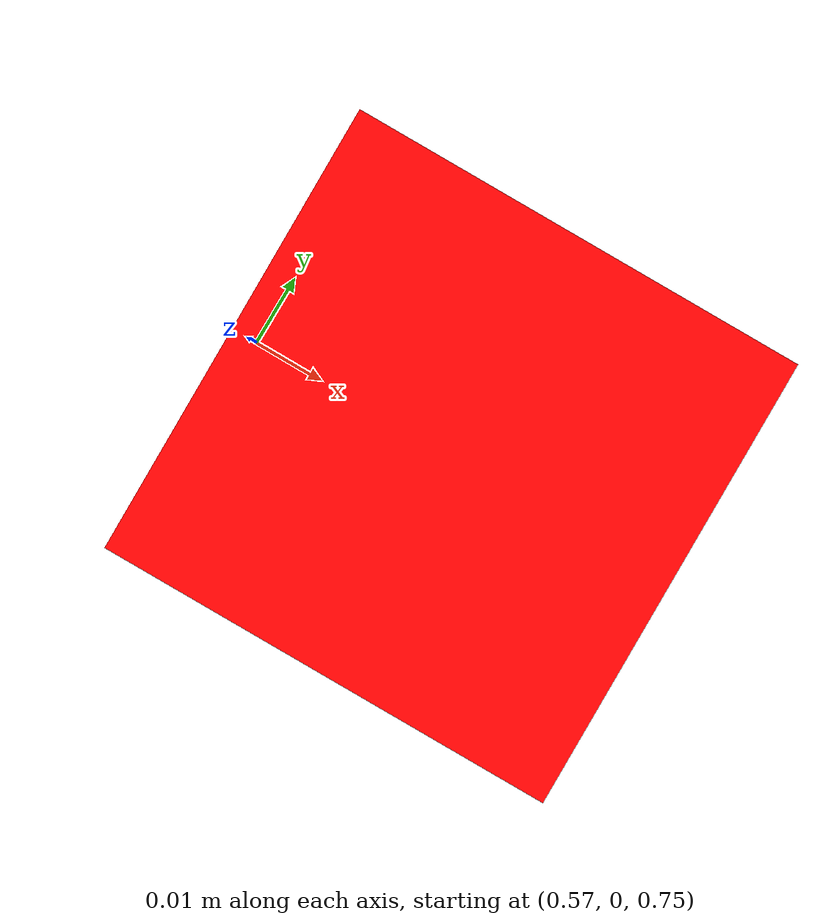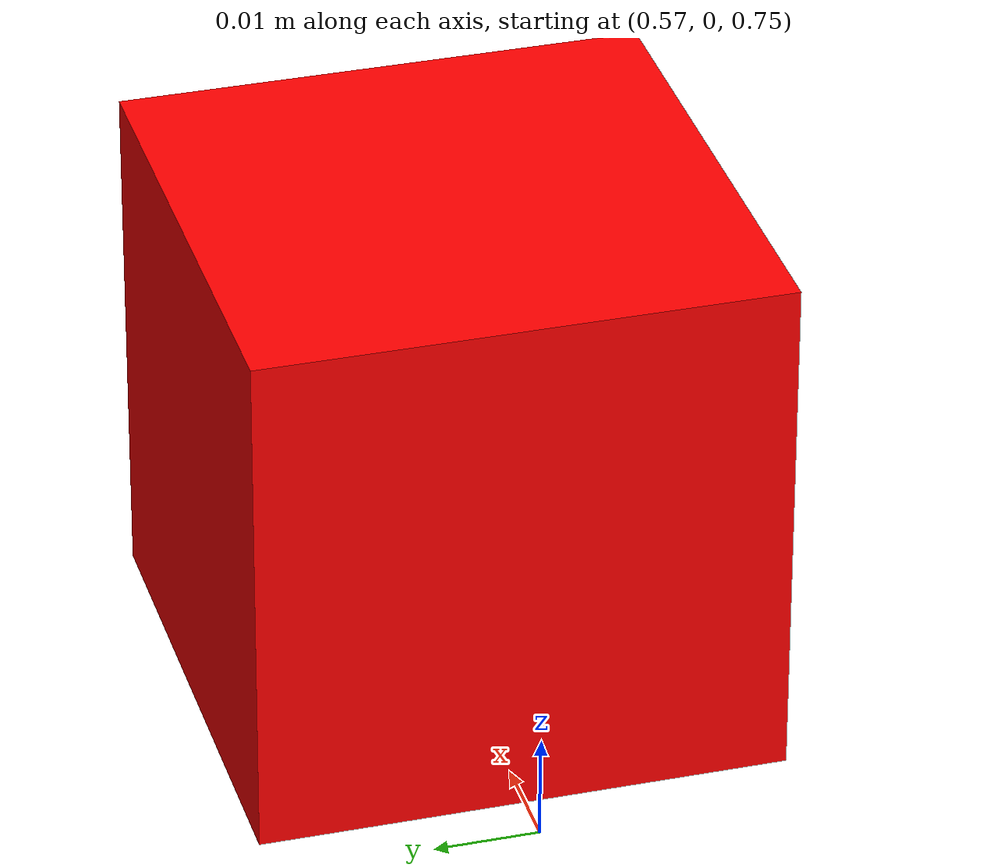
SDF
<?xml version="1.0" ?>
<sdf version="1.6">
  <model name="red_block">
    <static>false</static>
    <pose>0.6 0.0 0.775 0 0 0</pose>
    <link name="block_link">
      <visual name="visual">
        <geometry>
          <box><size>0.05 0.05 0.05</size></box>
        </geometry>
        <material>
          <ambient>1 0 0 1</ambient>
          <diffuse>1 0 0 1</diffuse>
        </material>
      </visual>
      <collision name="collision">
        <geometry>
          <box><size>0.05 0.05 0.05</size></box>
        </geometry>
        <surface>
          <friction>
            <ode>
              <mu>2.0</mu>
              <mu2>2.0</mu2>
            </ode>
          </friction>
        </surface>
      </collision>
      <inertial>
        <mass>0.05</mass>
        <inertia>
          <ixx>0.000021</ixx><ixy>0</ixy><ixz>0</ixz>
          <iyy>0.000021</iyy><iyz>0</iyz>
          <izz>0.000021</izz>
        </inertia>
      </inertial>
    </link>
  </model>
</sdf>
